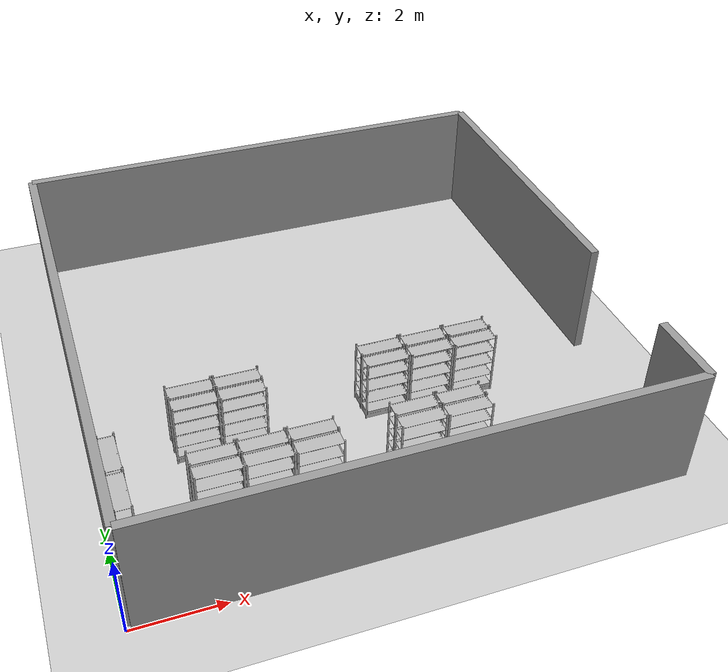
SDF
<sdf version="1.6">
 <world name="default">
  <model name="ground_plane">
   <static>1</static>
   <link name="link">
    <collision name="collision">
     <geometry><plane><normal>0 0 1</normal><size>100 100</size></plane></geometry>
     <surface>
      <contact><collide_bitmask>65535</collide_bitmask></contact>
      <friction><ode><mu>1000</mu><mu2>1000</mu2></ode></friction>
     </surface>
    </collision>
    <visual name="visual">
     <cast_shadows>0</cast_shadows>
     <geometry><plane><normal>0 0 1</normal><size>100 100</size></plane></geometry>
     <material>
      <script><uri>file://media/materials/scripts/gazebo.material</uri><name>Gazebo/Grey</name></script>
     </material>
    </visual>
   </link>
  </model>
  <model name="store_shelf_moduled_0">
   <link name="link">
    <collision name="collision">
     <geometry><mesh><uri>model://store_shelf_moduled/meshes/store_shelf_moduled.dae</uri></mesh></geometry>
    </collision>
    <visual name="visual">
     <geometry><mesh><uri>model://store_shelf_moduled/meshes/store_shelf_moduled.dae</uri></mesh></geometry>
    </visual>
    <inertial>
     <mass>1000</mass>
     <inertia>
      <ixx>840083</ixx>
      <ixy>0</ixy>
      <ixz>0</ixz>
      <iyy>475500</iyy>
      <iyz>0</iyz>
      <izz>1.30208e+06</izz>
     </inertia>
    </inertial>
   </link>
   <static>1</static>
   <pose>1.16 0.2 0 0 0 0</pose>
  </model>
  <model name="store_shelf_moduled_1">
   <link name="link">
    <collision name="collision">
     <geometry><mesh><uri>model://store_shelf_moduled/meshes/store_shelf_moduled.dae</uri></mesh></geometry>
    </collision>
    <visual name="visual">
     <geometry><mesh><uri>model://store_shelf_moduled/meshes/store_shelf_moduled.dae</uri></mesh></geometry>
    </visual>
    <inertial>
     <mass>1000</mass>
     <inertia>
      <ixx>840083</ixx>
      <ixy>0</ixy>
      <ixz>0</ixz>
      <iyy>475500</iyy>
      <iyz>0</iyz>
      <izz>1.30208e+06</izz>
     </inertia>
    </inertial>
   </link>
   <static>1</static>
   <pose>2.22 0.2 0 0 0 0</pose>
  </model>
  <model name="store_shelf_moduled_2">
   <link name="link">
    <collision name="collision">
     <geometry><mesh><uri>model://store_shelf_moduled/meshes/store_shelf_moduled.dae</uri></mesh></geometry>
    </collision>
    <visual name="visual">
     <geometry><mesh><uri>model://store_shelf_moduled/meshes/store_shelf_moduled.dae</uri></mesh></geometry>
    </visual>
    <inertial>
     <mass>1000</mass>
     <inertia>
      <ixx>840083</ixx>
      <ixy>0</ixy>
      <ixz>0</ixz>
      <iyy>475500</iyy>
      <iyz>0</iyz>
      <izz>1.30208e+06</izz>
     </inertia>
    </inertial>
   </link>
   <static>1</static>
   <pose>3.28 0.2 0 0 0 0</pose>
  </model>
  <model name="store_shelf_moduled_3">
   <link name="link">
    <collision name="collision">
     <geometry><mesh><uri>model://store_shelf_moduled/meshes/store_shelf_moduled.dae</uri></mesh></geometry>
    </collision>
    <visual name="visual">
     <geometry><mesh><uri>model://store_shelf_moduled/meshes/store_shelf_moduled.dae</uri></mesh></geometry>
    </visual>
    <inertial>
     <mass>1000</mass>
     <inertia>
      <ixx>840083</ixx>
      <ixy>0</ixy>
      <ixz>0</ixz>
      <iyy>475500</iyy>
      <iyz>0</iyz>
      <izz>1.30208e+06</izz>
     </inertia>
    </inertial>
   </link>
   <static>1</static>
   <pose>4.34 0.2 0 0 0 0</pose>
  </model>
  <model name="store_shelf_moduled_4">
   <link name="link">
    <collision name="collision">
     <geometry><mesh><uri>model://store_shelf_moduled/meshes/store_shelf_moduled.dae</uri></mesh></geometry>
    </collision>
    <visual name="visual">
     <geometry><mesh><uri>model://store_shelf_moduled/meshes/store_shelf_moduled.dae</uri></mesh></geometry>
    </visual>
    <inertial>
     <mass>1000</mass>
     <inertia>
      <ixx>840083</ixx>
      <ixy>0</ixy>
      <ixz>0</ixz>
      <iyy>475500</iyy>
      <iyz>0</iyz>
      <izz>1.30208e+06</izz>
     </inertia>
    </inertial>
   </link>
   <static>1</static>
   <pose>5.4 0.2 0 0 0 0</pose>
  </model>
  <model name="store_shelf_moduled_5">
   <link name="link">
    <collision name="collision">
     <geometry><mesh><uri>model://store_shelf_moduled/meshes/store_shelf_moduled.dae</uri></mesh></geometry>
    </collision>
    <visual name="visual">
     <geometry><mesh><uri>model://store_shelf_moduled/meshes/store_shelf_moduled.dae</uri></mesh></geometry>
    </visual>
    <inertial>
     <mass>1000</mass>
     <inertia>
      <ixx>840083</ixx>
      <ixy>0</ixy>
      <ixz>0</ixz>
      <iyy>475500</iyy>
      <iyz>0</iyz>
      <izz>1.30208e+06</izz>
     </inertia>
    </inertial>
   </link>
   <static>1</static>
   <pose>6.46 0.2 0 0 0 0</pose>
  </model>
  <model name="store_shelf_moduled_6">
   <link name="link">
    <collision name="collision">
     <geometry><mesh><uri>model://store_shelf_moduled/meshes/store_shelf_moduled.dae</uri></mesh></geometry>
    </collision>
    <visual name="visual">
     <geometry><mesh><uri>model://store_shelf_moduled/meshes/store_shelf_moduled.dae</uri></mesh></geometry>
    </visual>
    <inertial>
     <mass>1000</mass>
     <inertia>
      <ixx>840083</ixx>
      <ixy>0</ixy>
      <ixz>0</ixz>
      <iyy>475500</iyy>
      <iyz>0</iyz>
      <izz>1.30208e+06</izz>
     </inertia>
    </inertial>
   </link>
   <static>1</static>
   <pose>7.52 0.2 0 0 0 0</pose>
  </model>
  <model name="store_shelf_moduled_7">
   <link name="link">
    <collision name="collision">
     <geometry><mesh><uri>model://store_shelf_moduled/meshes/store_shelf_moduled.dae</uri></mesh></geometry>
    </collision>
    <visual name="visual">
     <geometry><mesh><uri>model://store_shelf_moduled/meshes/store_shelf_moduled.dae</uri></mesh></geometry>
    </visual>
    <inertial>
     <mass>1000</mass>
     <inertia>
      <ixx>840083</ixx>
      <ixy>0</ixy>
      <ixz>0</ixz>
      <iyy>475500</iyy>
      <iyz>0</iyz>
      <izz>1.30208e+06</izz>
     </inertia>
    </inertial>
   </link>
   <static>1</static>
   <pose>8.58 0.2 0 0 0 0</pose>
  </model>
  <model name="store_shelf_moduled_8">
   <link name="link">
    <collision name="collision">
     <geometry><mesh><uri>model://store_shelf_moduled/meshes/store_shelf_moduled.dae</uri></mesh></geometry>
    </collision>
    <visual name="visual">
     <geometry><mesh><uri>model://store_shelf_moduled/meshes/store_shelf_moduled.dae</uri></mesh></geometry>
    </visual>
    <inertial>
     <mass>1000</mass>
     <inertia>
      <ixx>840083</ixx>
      <ixy>0</ixy>
      <ixz>0</ixz>
      <iyy>475500</iyy>
      <iyz>0</iyz>
      <izz>1.30208e+06</izz>
     </inertia>
    </inertial>
   </link>
   <static>1</static>
   <pose>9.64 0.2 0 0 0 0</pose>
  </model>
  <model name="store_shelf_moduled_25">
   <link name="link">
    <collision name="collision">
     <geometry><mesh><uri>model://store_shelf_moduled/meshes/store_shelf_moduled.dae</uri></mesh></geometry>
    </collision>
    <visual name="visual">
     <geometry><mesh><uri>model://store_shelf_moduled/meshes/store_shelf_moduled.dae</uri></mesh></geometry>
    </visual>
    <inertial>
     <mass>1000</mass>
     <inertia>
      <ixx>840083</ixx>
      <ixy>0</ixy>
      <ixz>0</ixz>
      <iyy>475500</iyy>
      <iyz>0</iyz>
      <izz>1.30208e+06</izz>
     </inertia>
    </inertial>
   </link>
   <static>1</static>
   <pose>0.2 3.64 0 0 0 -1.570796</pose>
  </model>
  <model name="store_shelf_moduled_26">
   <link name="link">
    <collision name="collision">
     <geometry><mesh><uri>model://store_shelf_moduled/meshes/store_shelf_moduled.dae</uri></mesh></geometry>
    </collision>
    <visual name="visual">
     <geometry><mesh><uri>model://store_shelf_moduled/meshes/store_shelf_moduled.dae</uri></mesh></geometry>
    </visual>
    <inertial>
     <mass>1000</mass>
     <inertia>
      <ixx>840083</ixx>
      <ixy>0</ixy>
      <ixz>0</ixz>
      <iyy>475500</iyy>
      <iyz>0</iyz>
      <izz>1.30208e+06</izz>
     </inertia>
    </inertial>
   </link>
   <static>1</static>
   <pose>0.2 2.58 0 0 0 -1.570796</pose>
  </model>
  <model name="store_shelf_moduled_43">
   <link name="link">
    <collision name="collision">
     <geometry><mesh><uri>model://store_shelf_moduled/meshes/store_shelf_moduled.dae</uri></mesh></geometry>
    </collision>
    <visual name="visual">
     <geometry><mesh><uri>model://store_shelf_moduled/meshes/store_shelf_moduled.dae</uri></mesh></geometry>
    </visual>
    <inertial>
     <mass>1000</mass>
     <inertia>
      <ixx>840083</ixx>
      <ixy>0</ixy>
      <ixz>0</ixz>
      <iyy>475500</iyy>
      <iyz>0</iyz>
      <izz>1.30208e+06</izz>
     </inertia>
    </inertial>
   </link>
   <static>1</static>
   <pose>1.82 2.24 0 0 0 0</pose>
  </model>
  <model name="store_shelf_moduled_44">
   <link name="link">
    <collision name="collision">
     <geometry><mesh><uri>model://store_shelf_moduled/meshes/store_shelf_moduled.dae</uri></mesh></geometry>
    </collision>
    <visual name="visual">
     <geometry><mesh><uri>model://store_shelf_moduled/meshes/store_shelf_moduled.dae</uri></mesh></geometry>
    </visual>
    <inertial>
     <mass>1000</mass>
     <inertia>
      <ixx>840083</ixx>
      <ixy>0</ixy>
      <ixz>0</ixz>
      <iyy>475500</iyy>
      <iyz>0</iyz>
      <izz>1.30208e+06</izz>
     </inertia>
    </inertial>
   </link>
   <static>1</static>
   <pose>2.88 2.24 0 0 0 -3.141593</pose>
  </model>
  <model name="store_shelf_moduled_45">
   <link name="link">
    <collision name="collision">
     <geometry><mesh><uri>model://store_shelf_moduled/meshes/store_shelf_moduled.dae</uri></mesh></geometry>
    </collision>
    <visual name="visual">
     <geometry><mesh><uri>model://store_shelf_moduled/meshes/store_shelf_moduled.dae</uri></mesh></geometry>
    </visual>
    <inertial>
     <mass>1000</mass>
     <inertia>
      <ixx>840083</ixx>
      <ixy>0</ixy>
      <ixz>0</ixz>
      <iyy>475500</iyy>
      <iyz>0</iyz>
      <izz>1.30208e+06</izz>
     </inertia>
    </inertial>
   </link>
   <static>1</static>
   <pose>2.88 2.24 0 0 0 0</pose>
  </model>
  <model name="store_shelf_moduled_46">
   <link name="link">
    <collision name="collision">
     <geometry><mesh><uri>model://store_shelf_moduled/meshes/store_shelf_moduled.dae</uri></mesh></geometry>
    </collision>
    <visual name="visual">
     <geometry><mesh><uri>model://store_shelf_moduled/meshes/store_shelf_moduled.dae</uri></mesh></geometry>
    </visual>
    <inertial>
     <mass>1000</mass>
     <inertia>
      <ixx>840083</ixx>
      <ixy>0</ixy>
      <ixz>0</ixz>
      <iyy>475500</iyy>
      <iyz>0</iyz>
      <izz>1.30208e+06</izz>
     </inertia>
    </inertial>
   </link>
   <static>1</static>
   <pose>3.94 2.24 0 0 0 -3.141593</pose>
  </model>
  <model name="store_shelf_moduled_47">
   <link name="link">
    <collision name="collision">
     <geometry><mesh><uri>model://store_shelf_moduled/meshes/store_shelf_moduled.dae</uri></mesh></geometry>
    </collision>
    <visual name="visual">
     <geometry><mesh><uri>model://store_shelf_moduled/meshes/store_shelf_moduled.dae</uri></mesh></geometry>
    </visual>
    <inertial>
     <mass>1000</mass>
     <inertia>
      <ixx>840083</ixx>
      <ixy>0</ixy>
      <ixz>0</ixz>
      <iyy>475500</iyy>
      <iyz>0</iyz>
      <izz>1.30208e+06</izz>
     </inertia>
    </inertial>
   </link>
   <static>1</static>
   <pose>3.94 2.24 0 0 0 0</pose>
  </model>
  <model name="store_shelf_moduled_48">
   <link name="link">
    <collision name="collision">
     <geometry><mesh><uri>model://store_shelf_moduled/meshes/store_shelf_moduled.dae</uri></mesh></geometry>
    </collision>
    <visual name="visual">
     <geometry><mesh><uri>model://store_shelf_moduled/meshes/store_shelf_moduled.dae</uri></mesh></geometry>
    </visual>
    <inertial>
     <mass>1000</mass>
     <inertia>
      <ixx>840083</ixx>
      <ixy>0</ixy>
      <ixz>0</ixz>
      <iyy>475500</iyy>
      <iyz>0</iyz>
      <izz>1.30208e+06</izz>
     </inertia>
    </inertial>
   </link>
   <static>1</static>
   <pose>5 2.24 0 0 0 -3.141593</pose>
  </model>
  <model name="store_shelf_moduled_51">
   <link name="link">
    <collision name="collision">
     <geometry><mesh><uri>model://store_shelf_moduled/meshes/store_shelf_moduled.dae</uri></mesh></geometry>
    </collision>
    <visual name="visual">
     <geometry><mesh><uri>model://store_shelf_moduled/meshes/store_shelf_moduled.dae</uri></mesh></geometry>
    </visual>
    <inertial>
     <mass>1000</mass>
     <inertia>
      <ixx>840083</ixx>
      <ixy>0</ixy>
      <ixz>0</ixz>
      <iyy>475500</iyy>
      <iyz>0</iyz>
      <izz>1.30208e+06</izz>
     </inertia>
    </inertial>
   </link>
   <static>1</static>
   <pose>6.2 2.24 0 0 0 0</pose>
  </model>
  <model name="store_shelf_moduled_52">
   <link name="link">
    <collision name="collision">
     <geometry><mesh><uri>model://store_shelf_moduled/meshes/store_shelf_moduled.dae</uri></mesh></geometry>
    </collision>
    <visual name="visual">
     <geometry><mesh><uri>model://store_shelf_moduled/meshes/store_shelf_moduled.dae</uri></mesh></geometry>
    </visual>
    <inertial>
     <mass>1000</mass>
     <inertia>
      <ixx>840083</ixx>
      <ixy>0</ixy>
      <ixz>0</ixz>
      <iyy>475500</iyy>
      <iyz>0</iyz>
      <izz>1.30208e+06</izz>
     </inertia>
    </inertial>
   </link>
   <static>1</static>
   <pose>7.26 2.24 0 0 0 -3.141593</pose>
  </model>
  <model name="store_shelf_moduled_53">
   <link name="link">
    <collision name="collision">
     <geometry><mesh><uri>model://store_shelf_moduled/meshes/store_shelf_moduled.dae</uri></mesh></geometry>
    </collision>
    <visual name="visual">
     <geometry><mesh><uri>model://store_shelf_moduled/meshes/store_shelf_moduled.dae</uri></mesh></geometry>
    </visual>
    <inertial>
     <mass>1000</mass>
     <inertia>
      <ixx>840083</ixx>
      <ixy>0</ixy>
      <ixz>0</ixz>
      <iyy>475500</iyy>
      <iyz>0</iyz>
      <izz>1.30208e+06</izz>
     </inertia>
    </inertial>
   </link>
   <static>1</static>
   <pose>7.26 2.24 0 0 0 0</pose>
  </model>
  <model name="store_shelf_moduled_54">
   <link name="link">
    <collision name="collision">
     <geometry><mesh><uri>model://store_shelf_moduled/meshes/store_shelf_moduled.dae</uri></mesh></geometry>
    </collision>
    <visual name="visual">
     <geometry><mesh><uri>model://store_shelf_moduled/meshes/store_shelf_moduled.dae</uri></mesh></geometry>
    </visual>
    <inertial>
     <mass>1000</mass>
     <inertia>
      <ixx>840083</ixx>
      <ixy>0</ixy>
      <ixz>0</ixz>
      <iyy>475500</iyy>
      <iyz>0</iyz>
      <izz>1.30208e+06</izz>
     </inertia>
    </inertial>
   </link>
   <static>1</static>
   <pose>8.32 2.24 0 0 0 -3.141593</pose>
  </model>
  <model name="store_shelf_moduled_55">
   <link name="link">
    <collision name="collision">
     <geometry><mesh><uri>model://store_shelf_moduled/meshes/store_shelf_moduled.dae</uri></mesh></geometry>
    </collision>
    <visual name="visual">
     <geometry><mesh><uri>model://store_shelf_moduled/meshes/store_shelf_moduled.dae</uri></mesh></geometry>
    </visual>
    <inertial>
     <mass>1000</mass>
     <inertia>
      <ixx>840083</ixx>
      <ixy>0</ixy>
      <ixz>0</ixz>
      <iyy>475500</iyy>
      <iyz>0</iyz>
      <izz>1.30208e+06</izz>
     </inertia>
    </inertial>
   </link>
   <static>1</static>
   <pose>6.2 4.28 0 0 0 0</pose>
  </model>
  <model name="store_shelf_moduled_56">
   <link name="link">
    <collision name="collision">
     <geometry><mesh><uri>model://store_shelf_moduled/meshes/store_shelf_moduled.dae</uri></mesh></geometry>
    </collision>
    <visual name="visual">
     <geometry><mesh><uri>model://store_shelf_moduled/meshes/store_shelf_moduled.dae</uri></mesh></geometry>
    </visual>
    <inertial>
     <mass>1000</mass>
     <inertia>
      <ixx>840083</ixx>
      <ixy>0</ixy>
      <ixz>0</ixz>
      <iyy>475500</iyy>
      <iyz>0</iyz>
      <izz>1.30208e+06</izz>
     </inertia>
    </inertial>
   </link>
   <static>1</static>
   <pose>7.26 4.28 0 0 0 -3.141593</pose>
  </model>
  <model name="store_shelf_moduled_57">
   <link name="link">
    <collision name="collision">
     <geometry><mesh><uri>model://store_shelf_moduled/meshes/store_shelf_moduled.dae</uri></mesh></geometry>
    </collision>
    <visual name="visual">
     <geometry><mesh><uri>model://store_shelf_moduled/meshes/store_shelf_moduled.dae</uri></mesh></geometry>
    </visual>
    <inertial>
     <mass>1000</mass>
     <inertia>
      <ixx>840083</ixx>
      <ixy>0</ixy>
      <ixz>0</ixz>
      <iyy>475500</iyy>
      <iyz>0</iyz>
      <izz>1.30208e+06</izz>
     </inertia>
    </inertial>
   </link>
   <static>1</static>
   <pose>7.26 4.28 0 0 0 0</pose>
  </model>
  <model name="store_shelf_moduled_58">
   <link name="link">
    <collision name="collision">
     <geometry><mesh><uri>model://store_shelf_moduled/meshes/store_shelf_moduled.dae</uri></mesh></geometry>
    </collision>
    <visual name="visual">
     <geometry><mesh><uri>model://store_shelf_moduled/meshes/store_shelf_moduled.dae</uri></mesh></geometry>
    </visual>
    <inertial>
     <mass>1000</mass>
     <inertia>
      <ixx>840083</ixx>
      <ixy>0</ixy>
      <ixz>0</ixz>
      <iyy>475500</iyy>
      <iyz>0</iyz>
      <izz>1.30208e+06</izz>
     </inertia>
    </inertial>
   </link>
   <static>1</static>
   <pose>8.32 4.28 0 0 0 -3.141593</pose>
  </model>
  <model name="store_shelf_moduled_59">
   <link name="link">
    <collision name="collision">
     <geometry><mesh><uri>model://store_shelf_moduled/meshes/store_shelf_moduled.dae</uri></mesh></geometry>
    </collision>
    <visual name="visual">
     <geometry><mesh><uri>model://store_shelf_moduled/meshes/store_shelf_moduled.dae</uri></mesh></geometry>
    </visual>
    <inertial>
     <mass>1000</mass>
     <inertia>
      <ixx>840083</ixx>
      <ixy>0</ixy>
      <ixz>0</ixz>
      <iyy>475500</iyy>
      <iyz>0</iyz>
      <izz>1.30208e+06</izz>
     </inertia>
    </inertial>
   </link>
   <static>1</static>
   <pose>8.32 4.28 0 0 0 0</pose>
  </model>
  <model name="store_shelf_moduled_60">
   <link name="link">
    <collision name="collision">
     <geometry><mesh><uri>model://store_shelf_moduled/meshes/store_shelf_moduled.dae</uri></mesh></geometry>
    </collision>
    <visual name="visual">
     <geometry><mesh><uri>model://store_shelf_moduled/meshes/store_shelf_moduled.dae</uri></mesh></geometry>
    </visual>
    <inertial>
     <mass>1000</mass>
     <inertia>
      <ixx>840083</ixx>
      <ixy>0</ixy>
      <ixz>0</ixz>
      <iyy>475500</iyy>
      <iyz>0</iyz>
      <izz>1.30208e+06</izz>
     </inertia>
    </inertial>
   </link>
   <static>1</static>
   <pose>9.38 4.28 0 0 0 -3.141593</pose>
  </model>
  <model name="store_shelf_moduled_61">
   <link name="link">
    <collision name="collision">
     <geometry><mesh><uri>model://store_shelf_moduled/meshes/store_shelf_moduled.dae</uri></mesh></geometry>
    </collision>
    <visual name="visual">
     <geometry><mesh><uri>model://store_shelf_moduled/meshes/store_shelf_moduled.dae</uri></mesh></geometry>
    </visual>
    <inertial>
     <mass>1000</mass>
     <inertia>
      <ixx>840083</ixx>
      <ixy>0</ixy>
      <ixz>0</ixz>
      <iyy>475500</iyy>
      <iyz>0</iyz>
      <izz>1.30208e+06</izz>
     </inertia>
    </inertial>
   </link>
   <static>1</static>
   <pose>1.82 4.28 0 0 0 0</pose>
  </model>
  <model name="store_shelf_moduled_62">
   <link name="link">
    <collision name="collision">
     <geometry><mesh><uri>model://store_shelf_moduled/meshes/store_shelf_moduled.dae</uri></mesh></geometry>
    </collision>
    <visual name="visual">
     <geometry><mesh><uri>model://store_shelf_moduled/meshes/store_shelf_moduled.dae</uri></mesh></geometry>
    </visual>
    <inertial>
     <mass>1000</mass>
     <inertia>
      <ixx>840083</ixx>
      <ixy>0</ixy>
      <ixz>0</ixz>
      <iyy>475500</iyy>
      <iyz>0</iyz>
      <izz>1.30208e+06</izz>
     </inertia>
    </inertial>
   </link>
   <static>1</static>
   <pose>2.88 4.28 0 0 0 -3.141593</pose>
  </model>
  <model name="store_shelf_moduled_63">
   <link name="link">
    <collision name="collision">
     <geometry><mesh><uri>model://store_shelf_moduled/meshes/store_shelf_moduled.dae</uri></mesh></geometry>
    </collision>
    <visual name="visual">
     <geometry><mesh><uri>model://store_shelf_moduled/meshes/store_shelf_moduled.dae</uri></mesh></geometry>
    </visual>
    <inertial>
     <mass>1000</mass>
     <inertia>
      <ixx>840083</ixx>
      <ixy>0</ixy>
      <ixz>0</ixz>
      <iyy>475500</iyy>
      <iyz>0</iyz>
      <izz>1.30208e+06</izz>
     </inertia>
    </inertial>
   </link>
   <static>1</static>
   <pose>2.88 4.28 0 0 0 0</pose>
  </model>
  <model name="store_shelf_moduled_64">
   <link name="link">
    <collision name="collision">
     <geometry><mesh><uri>model://store_shelf_moduled/meshes/store_shelf_moduled.dae</uri></mesh></geometry>
    </collision>
    <visual name="visual">
     <geometry><mesh><uri>model://store_shelf_moduled/meshes/store_shelf_moduled.dae</uri></mesh></geometry>
    </visual>
    <inertial>
     <mass>1000</mass>
     <inertia>
      <ixx>840083</ixx>
      <ixy>0</ixy>
      <ixz>0</ixz>
      <iyy>475500</iyy>
      <iyz>0</iyz>
      <izz>1.30208e+06</izz>
     </inertia>
    </inertial>
   </link>
   <static>1</static>
   <pose>3.94 4.28 0 0 0 -3.141593</pose>
  </model>
  <model name="grey_wall0">
   <static>1</static>
   <link name="link">
    <pose>6.11 0.1 1.4 0 0 0</pose>
    <visual name="visual">
     <cast_shadows>0</cast_shadows>
     <geometry><box><size>12.02 0.2 2.8</size></box></geometry>
     <material>
      <name>vrc/grey_wall</name>
      <script>
       <uri>model://grey_wall/materials/scripts</uri>
       <uri>model://grey_wall/materials/textures</uri>
       <name>vrc/grey_wall</name>
      </script>
     </material>
    </visual>
    <collision name="collision">
     <geometry><box><size>12.02 0.2 2.8</size></box></geometry>
     <max_contacts>5</max_contacts>
    </collision>
   </link>
  </model>
  <model name="grey_wall1">
   <static>1</static>
   <link name="link">
    <pose>12.12 0.97 1.4 0 0 1.570796</pose>
    <visual name="visual">
     <cast_shadows>0</cast_shadows>
     <geometry><box><size>1.74 0.2 2.8</size></box></geometry>
     <material>
      <name>vrc/grey_wall</name>
      <script>
       <uri>model://grey_wall/materials/scripts</uri>
       <uri>model://grey_wall/materials/textures</uri>
       <name>vrc/grey_wall</name>
      </script>
     </material>
    </visual>
    <collision name="collision">
     <geometry><box><size>1.74 0.2 2.8</size></box></geometry>
     <max_contacts>5</max_contacts>
    </collision>
   </link>
  </model>
  <model name="grey_wall2">
   <static>1</static>
   <link name="link">
    <pose>12.12 8.38 1.4 0 0 1.570796</pose>
    <visual name="visual">
     <cast_shadows>0</cast_shadows>
     <geometry><box><size>7.48 0.2 2.8</size></box></geometry>
     <material>
      <name>vrc/grey_wall</name>
      <script>
       <uri>model://grey_wall/materials/scripts</uri>
       <uri>model://grey_wall/materials/textures</uri>
       <name>vrc/grey_wall</name>
      </script>
     </material>
    </visual>
    <collision name="collision">
     <geometry><box><size>7.48 0.2 2.8</size></box></geometry>
     <max_contacts>5</max_contacts>
    </collision>
   </link>
  </model>
  <model name="grey_wall3">
   <static>1</static>
   <link name="link">
    <pose>6.11 12.12 1.4 0 0 3.141593</pose>
    <visual name="visual">
     <cast_shadows>0</cast_shadows>
     <geometry><box><size>12.02 0.2 2.8</size></box></geometry>
     <material>
      <name>vrc/grey_wall</name>
      <script>
       <uri>model://grey_wall/materials/scripts</uri>
       <uri>model://grey_wall/materials/textures</uri>
       <name>vrc/grey_wall</name>
      </script>
     </material>
    </visual>
    <collision name="collision">
     <geometry><box><size>12.02 0.2 2.8</size></box></geometry>
     <max_contacts>5</max_contacts>
    </collision>
   </link>
  </model>
  <model name="grey_wall4">
   <static>1</static>
   <link name="link">
    <pose>0.1 6.11 1.4 0 0 -1.570796</pose>
    <visual name="visual">
     <cast_shadows>0</cast_shadows>
     <geometry><box><size>12.02 0.2 2.8</size></box></geometry>
     <material>
      <name>vrc/grey_wall</name>
      <script>
       <uri>model://grey_wall/materials/scripts</uri>
       <uri>model://grey_wall/materials/textures</uri>
       <name>vrc/grey_wall</name>
      </script>
     </material>
    </visual>
    <collision name="collision">
     <geometry><box><size>12.02 0.2 2.8</size></box></geometry>
     <max_contacts>5</max_contacts>
    </collision>
   </link>
  </model>
 </world>
</sdf>
